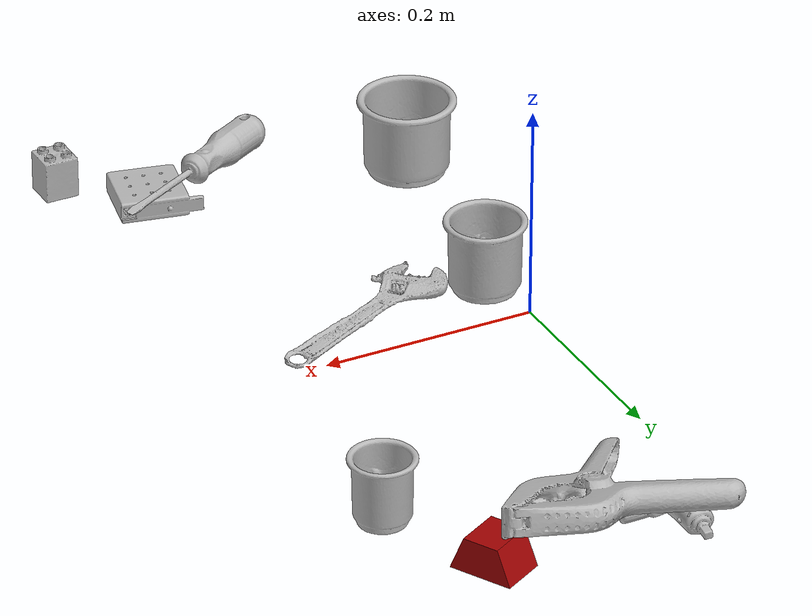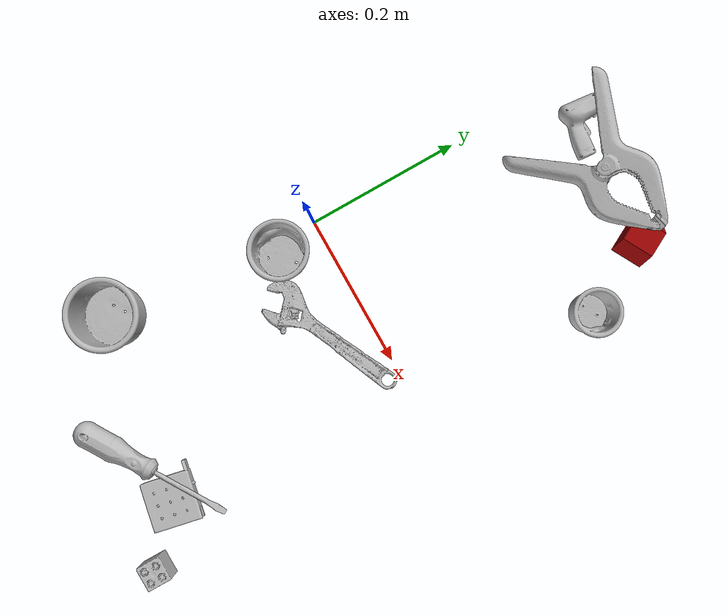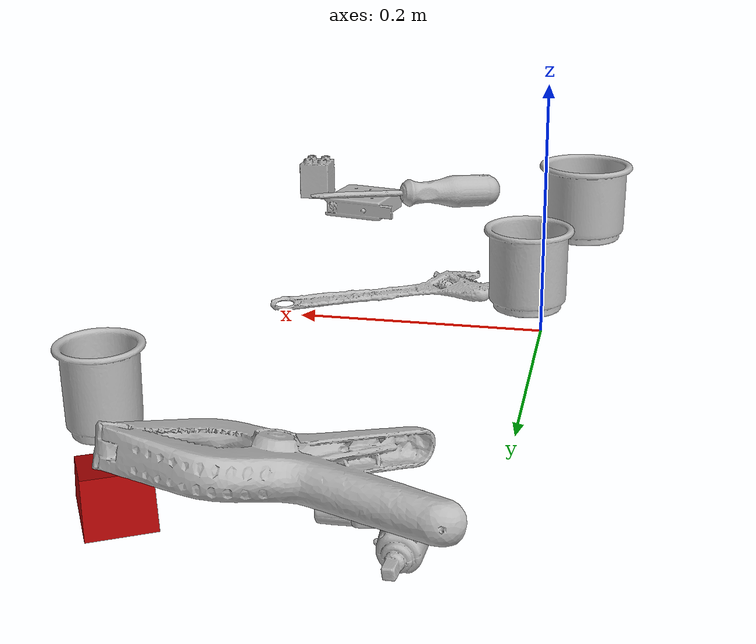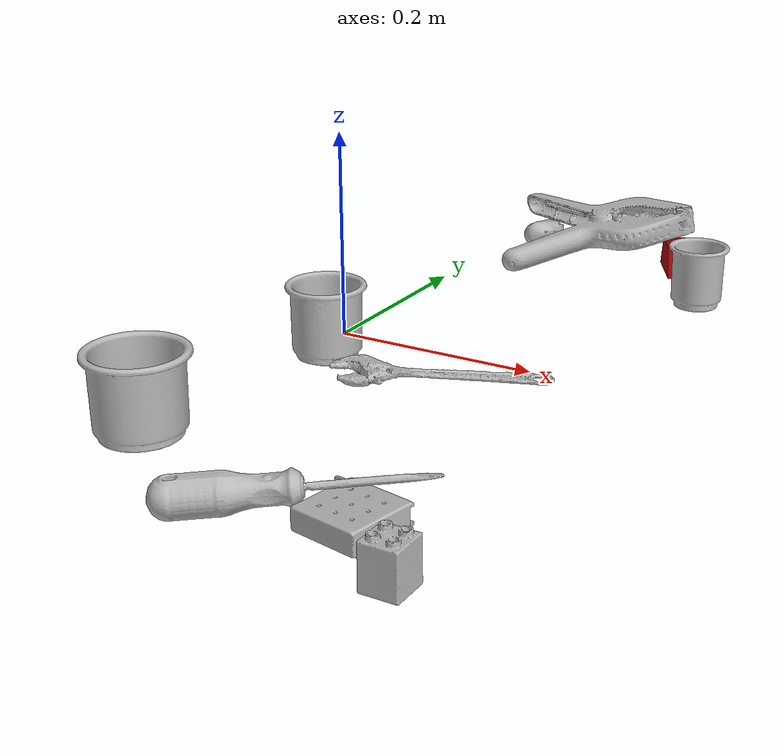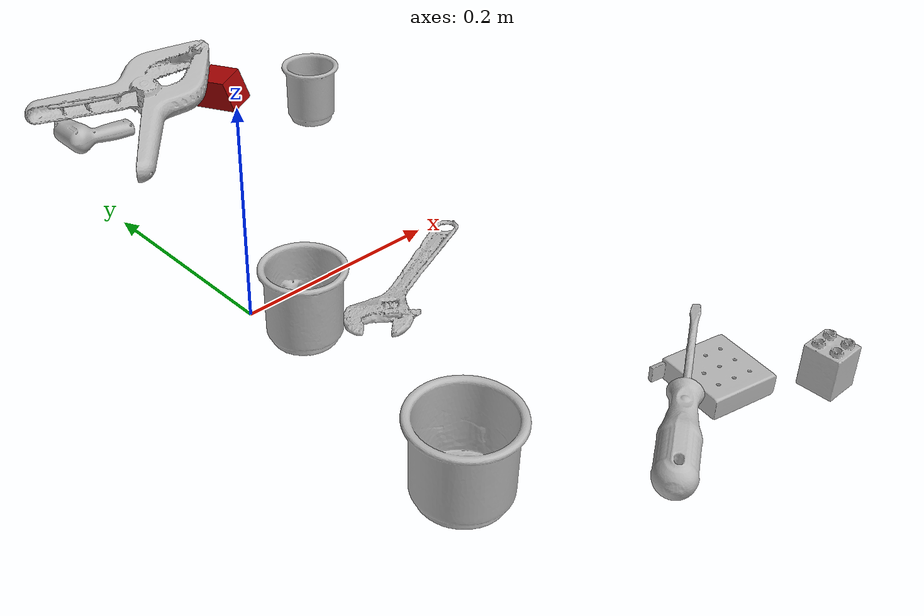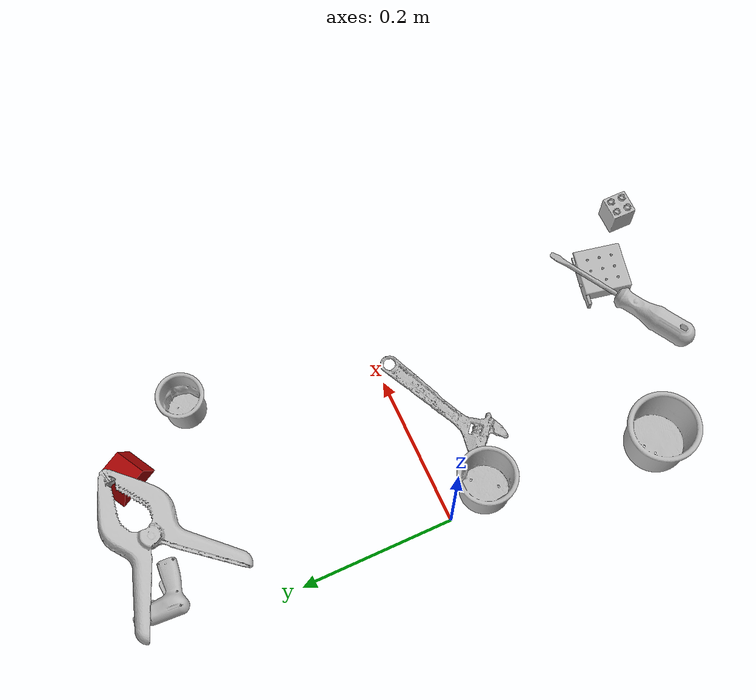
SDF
<sdf version="1.4">
  <world name="default">
    <light name="light1" type="point">
      <pose>0 0 1 0 0 0</pose>
      <diffuse>3 3 3 1</diffuse>
      <specular>3 3 3 1</specular>
    </light>
    <light name="light2" type="point">
      <pose>0 0.5 2 0 0 0</pose>
      <diffuse>1 1 1 1</diffuse>
      <specular>1 1 1 1</specular>
    </light>
    <light name="light3" type="point">
      <pose>0 0.5 2 0 0 0</pose>
      <diffuse>3 3 3 1</diffuse>
      <specular>3 3 3 1</specular>
    </light>
    <scene>
      <ambient>0.7 0.7 0.7</ambient>
    </scene>
    <model name="cup1">
      <link name="link_cup1">
        <collision name="default">
          <geometry>
            <mesh>
              <uri>model://b_cups/collision_meshes/collision.obj</uri>
              <scale>1.0 1.0 1.0</scale>
            </mesh>
          </geometry>
          <surface>
            <friction>
              <ode>
                <mu>0.5</mu>
                <mu2>0.5</mu2>
              </ode>
            </friction>
          <contact>
        <ode>
            <max_vel>0</max_vel>
            <min_depth>0.0001</min_depth>
            <kp>1e8</kp>
        </ode>
    </contact></surface>
        </collision>
        <visual name="default">
          <geometry>
            <mesh>
              <uri>model://b_cups/visual_meshes/visual.dae</uri>
              <scale>1.0 1.0 1.0</scale>
            </mesh>
          </geometry>
        </visual>
        <inertial>
          <mass>0.03190340846776962</mass>
          <pose>0.0005182004533708096 0.0018058607820421457 -0.0013381806202232838 0.11356328214070865 0.03872483993123738 -0.34569243052877063</pose>
          <inertia>
            <ixx>2.0883017e-05</ixx>
            <iyy>2.0486541e-05</iyy>
            <izz>1.7572664e-05</izz>
            <ixy>0</ixy>
            <ixz>0</ixz>
            <iyz>0</iyz>
          </inertia>
        </inertial>
      </link>
      <pose>0.2694760262966156 0.2442026436328888 0.03199658542871475 -0.007600752010182166 -0.003913069230584308 -1.821483254792828</pose>
    </model>
    <model name="cup2">
      <link name="link_cup2">
        <collision name="default">
          <geometry>
            <mesh>
              <uri>model://e_cups/collision_meshes/collision.obj</uri>
              <scale>1.0 1.0 1.0</scale>
            </mesh>
          </geometry>
          <surface>
            <friction>
              <ode>
                <mu>0.5</mu>
                <mu2>0.5</mu2>
              </ode>
            </friction>
          <contact>
        <ode>
            <max_vel>0</max_vel>
            <min_depth>0.0001</min_depth>
            <kp>1e8</kp>
        </ode>
    </contact></surface>
        </collision>
        <visual name="default">
          <geometry>
            <mesh>
              <uri>model://e_cups/visual_meshes/visual.dae</uri>
              <scale>1.0 1.0 1.0</scale>
            </mesh>
          </geometry>
        </visual>
        <inertial>
          <mass>0.09350046515464783</mass>
          <pose>0.0011355748865753412 0.0028797851409763098 -0.0038829720579087734 0.69524087765449 0.08767898447354379 -0.5235249697507389</pose>
          <inertia>
            <ixx>8.2444014e-05</ixx>
            <iyy>8.6165805e-05</iyy>
            <izz>7.882601e-05</izz>
            <ixy>0</ixy>
            <ixz>0</ixz>
            <iyz>0</iyz>
          </inertia>
        </inertial>
      </link>
      <pose>0.016471266746520996 -0.054195333272218704 0.0356002002954483 -1.3621129288473833e-05 8.153746376198281e-06 1.2649149920147456</pose>
    </model>
    <model name="cup3">
      <link name="link_cup3">
        <collision name="default">
          <geometry>
            <mesh>
              <uri>model://h_cups/collision_meshes/collision.obj</uri>
              <scale>1.0 1.0 1.0</scale>
            </mesh>
          </geometry>
          <surface>
            <friction>
              <ode>
                <mu>0.5</mu>
                <mu2>0.5</mu2>
              </ode>
            </friction>
          <contact>
        <ode>
            <max_vel>0</max_vel>
            <min_depth>0.0001</min_depth>
            <kp>1e8</kp>
        </ode>
    </contact></surface>
        </collision>
        <visual name="default">
          <geometry>
            <mesh>
              <uri>model://h_cups/visual_meshes/visual.dae</uri>
              <scale>1.0 1.0 1.0</scale>
            </mesh>
          </geometry>
        </visual>
        <inertial>
          <mass>0.05626832693815231</mass>
          <pose>-2.7024709197576158e-05 0.00023018589126877487 -0.0018405396258458495 -0.02436208446622447 0.06545190020339471 0.12885609358770897</pose>
          <inertia>
            <ixx>7.2667885e-05</ixx>
            <iyy>7.180077e-05</iyy>
            <izz>7.620872e-05</izz>
            <ixy>0</ixy>
            <ixz>0</ixz>
            <iyz>0</iyz>
          </inertia>
        </inertial>
      </link>
      <pose>-0.019294830039143562 -0.27565130591392517 0.037758007645606995 -1.386352290295309e-07 -1.837863463317008e-07 -1.0988480482395617</pose>
    </model>
    <model name="toy1">
      <link name="link_toy1">
        <collision name="default">
          <geometry>
            <mesh>
              <uri>model://nine_hole_peg_test/collision_meshes/collision.obj</uri>
              <scale>0.5 0.5 0.5</scale>
            </mesh>
          </geometry>
          <surface>
            <friction>
              <ode>
                <mu>0.5</mu>
                <mu2>0.5</mu2>
              </ode>
            </friction>
          <contact>
        <ode>
            <max_vel>0</max_vel>
            <min_depth>0.0001</min_depth>
            <kp>1e8</kp>
        </ode>
    </contact></surface>
        </collision>
        <visual name="default">
          <geometry>
            <mesh>
              <uri>model://nine_hole_peg_test/visual_meshes/visual.dae</uri>
              <scale>0.5 0.5 0.5</scale>
            </mesh>
          </geometry>
        </visual>
        <inertial>
          <mass>0.06318242102861404</mass>
          <pose>-0.0023086941801011562 -0.004823808092623949 1.3230346667114645e-05 -0.0014666789322941463 0.0007194184826049595 -0.6342412444031488</pose>
          <inertia>
            <ixx>2.4699024e-05</ixx>
            <iyy>2.3061213e-05</iyy>
            <izz>4.327997e-05</izz>
            <ixy>0</ixy>
            <ixz>0</ixz>
            <iyz>0</iyz>
          </inertia>
        </inertial>
      </link>
      <pose>0.21339599788188934 -0.3226557970046997 0.010385489091277122 -1.8972627656839598e-06 8.670142846234742e-07 1.3741154411821335</pose>
    </model>
    <model name="toy2">
      <link name="link_toy2">
        <collision name="default">
          <geometry>
            <mesh>
              <uri>model://prism/collision_meshes/collision.obj</uri>
              <scale>0.5 0.5 0.5</scale>
            </mesh>
          </geometry>
          <surface>
            <friction>
              <ode>
                <mu>0.5</mu>
                <mu2>0.5</mu2>
              </ode>
            </friction>
          <contact>
        <ode>
            <max_vel>0</max_vel>
            <min_depth>0.0001</min_depth>
            <kp>1e8</kp>
        </ode>
    </contact></surface>
        </collision>
        <visual name="default">
          <geometry>
            <mesh>
              <uri>model://prism/visual_meshes/visual.dae</uri>
              <scale>0.5 0.5 0.5</scale>
            </mesh>
          </geometry>
        </visual>
        <inertial>
          <mass>0.058882199227809906</mass>
          <pose>-4.92679828312248e-05 -2.480786349678965e-07 -0.0016934550367295742 0.0 0.00655918030046738 0.0</pose>
          <inertia>
            <ixx>1.32851155e-05</ixx>
            <iyy>1.6055232e-05</iyy>
            <izz>1.9665738e-05</izz>
            <ixy>0</ixy>
            <ixz>0</ixz>
            <iyz>0</iyz>
          </inertia>
        </inertial>
      </link>
      <pose>0.2188122570514679 0.3466370701789856 0.016084592789411545 2.3566450075229287e-05 1.676339931635462e-06 2.0751364265768513</pose>
    </model>
    <model name="toy3">
      <link name="link_toy3">
        <collision name="default">
          <geometry>
            <mesh>
              <uri>model://b_toy_airplane/collision_meshes/collision.obj</uri>
              <scale>0.5 0.5 0.5</scale>
            </mesh>
          </geometry>
          <surface>
            <friction>
              <ode>
                <mu>0.5</mu>
                <mu2>0.5</mu2>
              </ode>
            </friction>
          <contact>
        <ode>
            <max_vel>0</max_vel>
            <min_depth>0.0001</min_depth>
            <kp>1e8</kp>
        </ode>
    </contact></surface>
        </collision>
        <visual name="default">
          <geometry>
            <mesh>
              <uri>model://b_toy_airplane/visual_meshes/visual.dae</uri>
              <scale>0.5 0.5 0.5</scale>
            </mesh>
          </geometry>
        </visual>
        <inertial>
          <mass>0.06070837751030922</mass>
          <pose>0.002540682442486286 0.0020077924709767103 0.0047715334221720695 -0.040018114249042835 -0.04022179473329346 -0.5601502235260123</pose>
          <inertia>
            <ixx>2.8176557e-05</ixx>
            <iyy>1.1262445e-05</iyy>
            <izz>3.5054447e-05</izz>
            <ixy>0</ixy>
            <ixz>0</ixz>
            <iyz>0</iyz>
          </inertia>
        </inertial>
      </link>
      <pose>0.055231086909770966 0.3507910370826721 0.009385509416460991 0.09721127863529491 0.11752151967211696 1.4848333031024599</pose>
    </model>
    <model name="toy4">
      <link name="link_toy4">
        <collision name="default">
          <geometry>
            <mesh>
              <uri>model://f_lego_duplo/collision_meshes/collision.obj</uri>
              <scale>1.0 1.0 1.0</scale>
            </mesh>
          </geometry>
          <surface>
            <friction>
              <ode>
                <mu>0.5</mu>
                <mu2>0.5</mu2>
              </ode>
            </friction>
          <contact>
        <ode>
            <max_vel>0</max_vel>
            <min_depth>0.0001</min_depth>
            <kp>1e8</kp>
        </ode>
    </contact></surface>
        </collision>
        <visual name="default">
          <geometry>
            <mesh>
              <uri>model://f_lego_duplo/visual_meshes/visual.dae</uri>
              <scale>1.0 1.0 1.0</scale>
            </mesh>
          </geometry>
        </visual>
        <inertial>
          <mass>0.029542475938796997</mass>
          <pose>2.369392677792348e-05 0.00013393184053711593 0.0018837879179045558 0.029838766168002753 -0.014424835911361083 -0.6756712748416152</pose>
          <inertia>
            <ixx>6.2424897e-06</ixx>
            <iyy>6.2981026e-06</iyy>
            <izz>5.4187462e-06</izz>
            <ixy>0</ixy>
            <ixz>0</ixz>
            <iyz>0</iyz>
          </inertia>
        </inertial>
      </link>
      <pose>0.28384214639663696 -0.38316765427589417 0.021870991215109825 -6.523887901011791e-07 3.203804096016285e-07 -3.141575964289362</pose>
    </model>
    <model name="hardware1">
      <link name="link_hardware1">
        <collision name="default">
          <geometry>
            <mesh>
              <uri>model://extra_large_clamp/collision_meshes/collision.obj</uri>
              <scale>1.0 1.0 1.0</scale>
            </mesh>
          </geometry>
          <surface>
            <friction>
              <ode>
                <mu>0.5</mu>
                <mu2>0.5</mu2>
              </ode>
            </friction>
          <contact>
        <ode>
            <max_vel>0</max_vel>
            <min_depth>0.0001</min_depth>
            <kp>1e8</kp>
        </ode>
    </contact></surface>
        </collision>
        <visual name="default">
          <geometry>
            <mesh>
              <uri>model://extra_large_clamp/visual_meshes/visual.dae</uri>
              <scale>1.0 1.0 1.0</scale>
            </mesh>
          </geometry>
        </visual>
        <inertial>
          <mass>0.20469266176223755</mass>
          <pose>0.00323202065192163 -7.615445792907849e-05 0.0003172155993524939 0.013786991356050505 -0.0005066836095273004 -0.000893628832478523</pose>
          <inertia>
            <ixx>0.00031109934</ixx>
            <iyy>0.0005356169</iyy>
            <izz>0.00081831246</izz>
            <ixy>0</ixy>
            <ixz>0</ixz>
            <iyz>0</iyz>
          </inertia>
        </inertial>
      </link>
      <pose>0.12343527376651764 0.34322625398635864 0.03822241351008415 0.17226115774280698 -0.14684683565514545 0.23935097149606868</pose>
    </model>
    <model name="hardware2">
      <link name="link_hardware2">
        <collision name="default">
          <geometry>
            <mesh>
              <uri>model://flat_screwdriver/collision_meshes/collision.obj</uri>
              <scale>1.0 1.0 1.0</scale>
            </mesh>
          </geometry>
          <surface>
            <friction>
              <ode>
                <mu>0.5</mu>
                <mu2>0.5</mu2>
              </ode>
            </friction>
          <contact>
        <ode>
            <max_vel>0</max_vel>
            <min_depth>0.0001</min_depth>
            <kp>1e8</kp>
        </ode>
    </contact></surface>
        </collision>
        <visual name="default">
          <geometry>
            <mesh>
              <uri>model://flat_screwdriver/visual_meshes/visual.dae</uri>
              <scale>1.0 1.0 1.0</scale>
            </mesh>
          </geometry>
        </visual>
        <inertial>
          <mass>0.09510745853185654</mass>
          <pose>-0.048918697983026505 -0.0006576799787580967 -0.000614091579336673 -0.5614762322958965 -0.003233723970645699 0.006982278511552064</pose>
          <inertia>
            <ixx>1.1236876e-05</ixx>
            <iyy>0.00014265477</iyy>
            <izz>0.00014258873</izz>
            <ixy>0</ixy>
            <ixz>0</ixz>
            <iyz>0</iyz>
          </inertia>
        </inertial>
      </link>
      <pose>0.16905616223812103 -0.32885241508483887 0.022824756801128387 -0.16226819412466256 -0.05981014783815275 0.5582123454409605</pose>
    </model>
    <model name="hardware3">
      <link name="link_hardware3">
        <collision name="default">
          <geometry>
            <mesh>
              <uri>model://adjustable_wrench/collision_meshes/collision.obj</uri>
              <scale>1.0 1.0 1.0</scale>
            </mesh>
          </geometry>
          <surface>
            <friction>
              <ode>
                <mu>0.5</mu>
                <mu2>0.5</mu2>
              </ode>
            </friction>
          <contact>
        <ode>
            <max_vel>0</max_vel>
            <min_depth>0.0001</min_depth>
            <kp>1e8</kp>
        </ode>
    </contact></surface>
        </collision>
        <visual name="default">
          <geometry>
            <mesh>
              <uri>model://adjustable_wrench/visual_meshes/visual.dae</uri>
              <scale>1.0 1.0 1.0</scale>
            </mesh>
          </geometry>
        </visual>
        <inertial>
          <mass>0.02741360291838646</mass>
          <pose>0.03740980476140976 -0.002896887017413974 -0.0011149230413138866 -0.0144733350781748 0.006656025939833136 -0.010954202845362587</pose>
          <inertia>
            <ixx>5.610589e-06</ixx>
            <iyy>6.5665416e-05</iyy>
            <izz>7.0977985e-05</izz>
            <ixy>0</ixy>
            <ixz>0</ixz>
            <iyz>0</iyz>
          </inertia>
        </inertial>
      </link>
      <pose>0.13543547689914703 -0.058058593422174454 0.006125045008957386 0.0467594280056161 -0.029270572613283204 -2.728316989146374</pose>
    </model>
  <physics type="ode">
      <max_contacts>50</max_contacts>
      <ode>
        <solver>
          <type>quick</type>
          <iters>75</iters>
        </solver>
        <constraints>
          <contact_max_correcting_vel>0</contact_max_correcting_vel>
          <contact_surface_layer>0</contact_surface_layer>
        </constraints>
      </ode>
    </physics></world>
</sdf>
